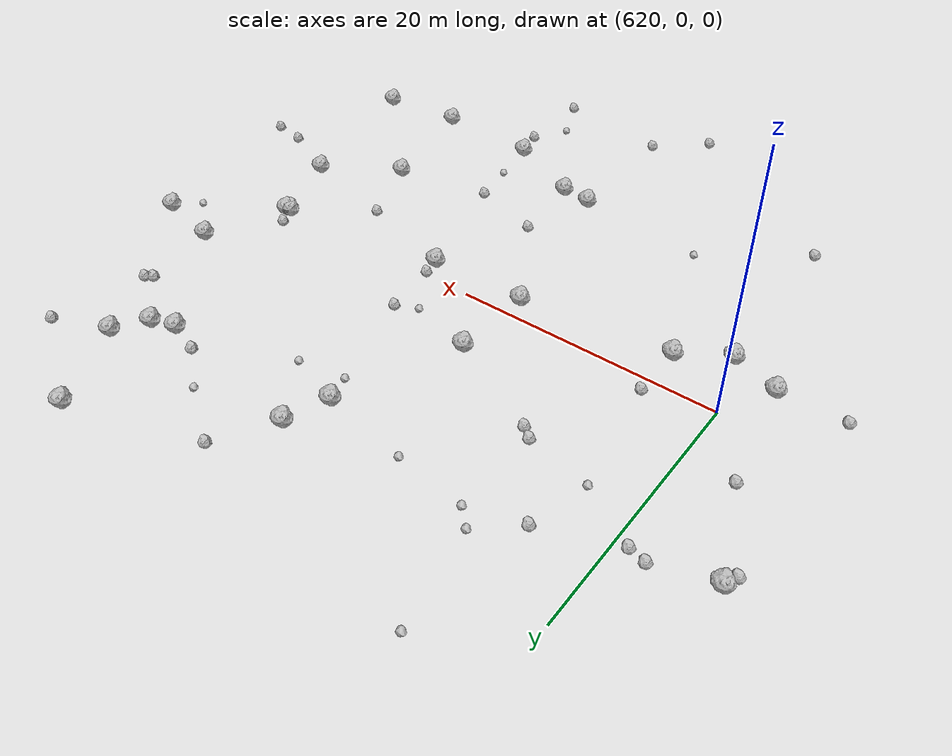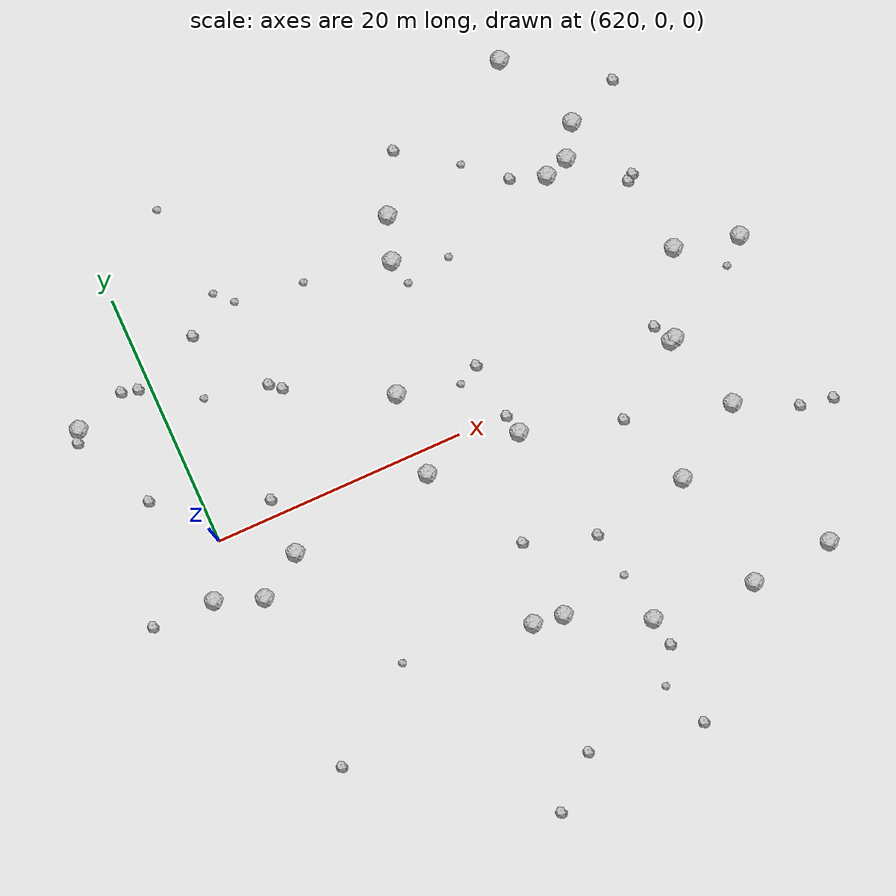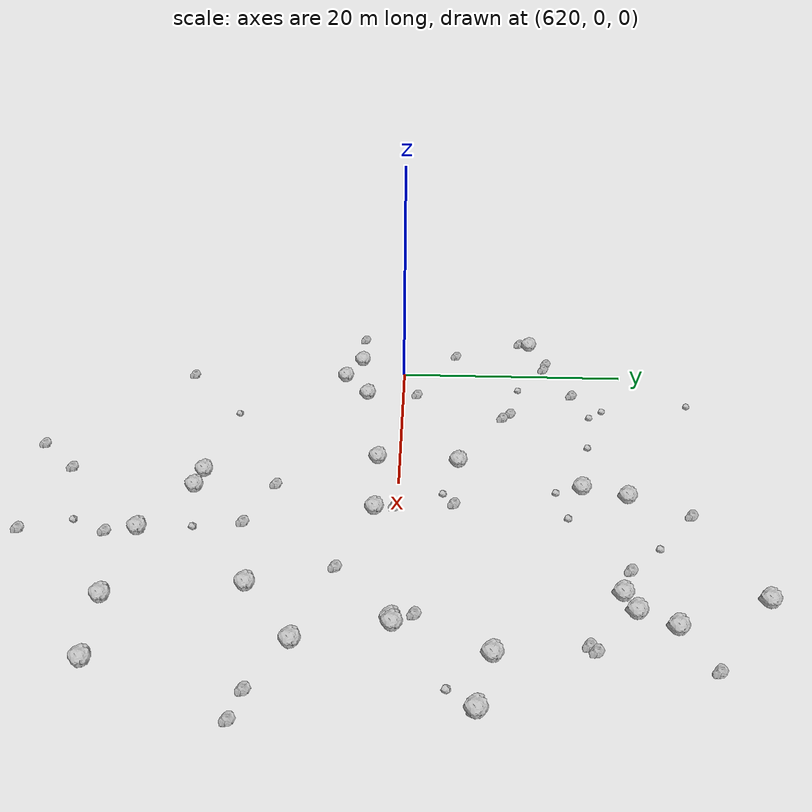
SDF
<sdf version="1.6">
 <world name="default">
  <include><uri>model://sun</uri></include>
  <model name="rock1_16_3">
   <include><uri>model://rock1</uri><pose>636.8918171965458 4.717740671508267 0.5 0 0 0</pose></include>
  </model>
  <model name="rock1_16_4">
   <include><uri>model://rock1</uri><pose>621.4518092855791 -5.376486280834875 0.5 0 0 0</pose></include>
  </model>
  <model name="rock1_16_5">
   <include><uri>model://rock1</uri><pose>655.8819229366939 -19.38977260501082 0.5 0 0 0</pose></include>
  </model>
  <model name="rock1_16_6">
   <include><uri>model://rock1</uri><pose>657.5988495511546 -0.061847325324229985 0.5 0 0 0</pose></include>
  </model>
  <model name="rock1_16_7">
   <include><uri>model://rock1</uri><pose>647.7420668546283 -18.827248626581202 0.5 0 0 0</pose></include>
  </model>
  <model name="rock1_16_8">
   <include><uri>model://rock1</uri><pose>644.2116294672677 -1.7231311151460638 0.5 0 0 0</pose></include>
  </model>
  <model name="rock1_16_9">
   <include><uri>model://rock1</uri><pose>641.8091063225994 17.476256491335853 0.5 0 0 0</pose></include>
  </model>
  <model name="rock1_16_10">
   <include><uri>model://rock1</uri><pose>636.5676126503353 -1.7832499410898954 0.5 0 0 0</pose></include>
  </model>
  <model name="rock1_16_11">
   <include><uri>model://rock1</uri><pose>617.8270936860022 -4.0058671198020726 0.5 0 0 0</pose></include>
  </model>
  <model name="rock1_16_12">
   <include><uri>model://rock1</uri><pose>640.6703614172244 14.147500026724316 0.5 0 0 0</pose></include>
  </model>
  <model name="rock1_16_13">
   <include><uri>model://rock1</uri><pose>657.5520763801708 18.286413247828563 0.5 0 0 0</pose></include>
  </model>
  <model name="rock1_16_14">
   <include><uri>model://rock1</uri><pose>654.1331949679982 15.31426175456189 0.5 0 0 0</pose></include>
  </model>
  <model name="rock1_16_15">
   <include><uri>model://rock1</uri><pose>657.9660910724624 0.03277590805026165 0.5 0 0 0</pose></include>
  </model>
  <model name="rock1_16_16">
   <include><uri>model://rock1</uri><pose>654.146805693785 -9.98772487716559 0.5 0 0 0</pose></include>
  </model>
  <model name="rock1_16_17">
   <include><uri>model://rock1</uri><pose>662.3410388428965 -18.8940443316365 0.5 0 0 0</pose></include>
  </model>
  <model name="rock1_16_18">
   <include><uri>model://rock1</uri><pose>624.9797355945303 -3.187845453055427 0.5 0 0 0</pose></include>
  </model>
  <model name="rock1_16_19">
   <include><uri>model://rock1</uri><pose>659.948288886168 -6.294192674137118 0.5 0 0 0</pose></include>
  </model>
  <model name="rock1_16_20">
   <include><uri>model://rock1</uri><pose>665.6817905678228 5.155061511599719 0.5 0 0 0</pose></include>
  </model>
  <model name="rock1_16_21">
   <include><uri>model://rock1</uri><pose>613.7172590599407 12.074266122927483 0.5 0 0 0</pose></include>
  </model>
  <model name="rock1_16_22">
   <include><uri>model://rock1</uri><pose>660.6974869271357 6.3363867991283485 0.5 0 0 0</pose></include>
  </model>
  <model name="rock1_16_23">
   <include><uri>model://rock1</uri><pose>641.6567834190726 -15.777079754000884 0.5 0 0 0</pose></include>
  </model>
  <model name="rock1_16_24">
   <include><uri>model://rock1</uri><pose>654.4501151059496 24.878497801451147 0.5 0 0 0</pose></include>
  </model>
  <model name="rock1_16_25">
   <include><uri>model://rock1</uri><pose>656.025312489348 15.917713914472358 0.5 0 0 0</pose></include>
  </model>
  <model name="rock1_16_26">
   <include><uri>model://rock1</uri><pose>639.2586748688169 -15.440886745546482 0.5 0 0 0</pose></include>
  </model>
  <model name="rock2_16_0">
   <include><uri>model://rock2</uri><pose>619.0750915979297 13.034793577657894 0.3 0 0 0</pose></include>
  </model>
  <model name="rock2_16_1">
   <include><uri>model://rock2</uri><pose>659.6079345238529 12.439707693935269 0.3 0 0 0</pose></include>
  </model>
  <model name="rock2_16_2">
   <include><uri>model://rock2</uri><pose>651.8628634666038 -4.061748570204742 0.3 0 0 0</pose></include>
  </model>
  <model name="rock2_16_3">
   <include><uri>model://rock2</uri><pose>646.4730281109719 -11.2781475573105 0.3 0 0 0</pose></include>
  </model>
  <model name="rock2_16_4">
   <include><uri>model://rock2</uri><pose>667.1227225585371 -9.031355094737886 0.3 0 0 0</pose></include>
  </model>
  <model name="rock2_16_5">
   <include><uri>model://rock2</uri><pose>651.4116241427935 16.26424918112147 0.3 0 0 0</pose></include>
  </model>
  <model name="rock2_16_6">
   <include><uri>model://rock2</uri><pose>641.01193637408 -9.497309366720295 0.3 0 0 0</pose></include>
  </model>
  <model name="rock2_16_7">
   <include><uri>model://rock2</uri><pose>624.8825365230097 1.262590254452597 0.3 0 0 0</pose></include>
  </model>
  <model name="rock2_16_8">
   <include><uri>model://rock2</uri><pose>628.2804489383121 9.37581249690269 0.3 0 0 0</pose></include>
  </model>
  <model name="rock2_16_9">
   <include><uri>model://rock2</uri><pose>616.3596211409666 4.92240608702663 0.3 0 0 0</pose></include>
  </model>
  <model name="rock2_16_10">
   <include><uri>model://rock2</uri><pose>612.7980285523068 -3.9549071609446287 0.3 0 0 0</pose></include>
  </model>
  <model name="rock2_16_11">
   <include><uri>model://rock2</uri><pose>624.4848091526337 15.08962847725352 0.3 0 0 0</pose></include>
  </model>
  <model name="rock2_16_12">
   <include><uri>model://rock2</uri><pose>648.0317644483134 -27.535168796310256 0.3 0 0 0</pose></include>
  </model>
  <model name="rock2_16_13">
   <include><uri>model://rock2</uri><pose>661.7061530123269 19.989875301830452 0.3 0 0 0</pose></include>
  </model>
  <model name="rock2_16_14">
   <include><uri>model://rock2</uri><pose>629.1252054294519 8.674104827409991 0.3 0 0 0</pose></include>
  </model>
  <model name="rock2_16_15">
   <include><uri>model://rock2</uri><pose>643.2986620996439 4.263057577128983 0.3 0 0 0</pose></include>
  </model>
  <model name="rock2_16_16">
   <include><uri>model://rock2</uri><pose>639.0950479590181 -26.033253937145762 0.3 0 0 0</pose></include>
  </model>
  <model name="rock2_16_17">
   <include><uri>model://rock2</uri><pose>621.5811637542538 -19.45773414804242 0.3 0 0 0</pose></include>
  </model>
  <model name="rock2_16_18">
   <include><uri>model://rock2</uri><pose>644.2037441865319 21.836377978756886 0.3 0 0 0</pose></include>
  </model>
  <model name="rock2_16_19">
   <include><uri>model://rock2</uri><pose>643.8301402273223 -0.18799968899729436 0.3 0 0 0</pose></include>
  </model>
  <model name="rock2_16_20">
   <include><uri>model://rock2</uri><pose>635.3500985598341 -29.377615796563163 0.3 0 0 0</pose></include>
  </model>
  <model name="rock2_16_21">
   <include><uri>model://rock2</uri><pose>648.1192937730772 -21.115064642189132 0.3 0 0 0</pose></include>
  </model>
  <model name="rock2_16_22">
   <include><uri>model://rock2</uri><pose>656.881401340845 1.4671082497334211 0.3 0 0 0</pose></include>
  </model>
  <model name="rock2_16_23">
   <include><uri>model://rock2</uri><pose>660.1402381865964 12.809439295581797 0.3 0 0 0</pose></include>
  </model>
  <model name="rock2_16_24">
   <include><uri>model://rock2</uri><pose>613.2257796512197 11.16946623794692 0.3 0 0 0</pose></include>
  </model>
  <model name="rock2_16_25">
   <include><uri>model://rock2</uri><pose>617.8040084090097 13.375875609907311 0.3 0 0 0</pose></include>
  </model>
  <model name="rock2_16_26">
   <include><uri>model://rock2</uri><pose>664.5589142739144 -8.521007204349505 0.3 0 0 0</pose></include>
  </model>
  <model name="rock3_16_0">
   <include><uri>model://rock3</uri><pose>665.7680005603573 4.874316682485421 0.2 0 0 0</pose></include>
  </model>
  <model name="rock3_16_1">
   <include><uri>model://rock3</uri><pose>625.9002494117262 25.01044614397238 0.2 0 0 0</pose></include>
  </model>
  <model name="rock3_16_2">
   <include><uri>model://rock3</uri><pose>623.3434028312087 10.374066740120973 0.2 0 0 0</pose></include>
  </model>
  <model name="rock3_16_3">
   <include><uri>model://rock3</uri><pose>641.642269961215 3.4333844707287327 0.2 0 0 0</pose></include>
  </model>
  <model name="rock3_16_4">
   <include><uri>model://rock3</uri><pose>628.452433318488 16.17631311237237 0.2 0 0 0</pose></include>
  </model>
  <model name="rock3_16_5">
   <include><uri>model://rock3</uri><pose>646.480441682927 -23.875210909218264 0.2 0 0 0</pose></include>
  </model>
  <model name="rock3_16_6">
   <include><uri>model://rock3</uri><pose>641.1069955453381 12.100864468722207 0.2 0 0 0</pose></include>
  </model>
  <model name="rock3_16_7">
   <include><uri>model://rock3</uri><pose>628.9512431200208 -14.153430849337374 0.2 0 0 0</pose></include>
  </model>
  <model name="rock3_16_8">
   <include><uri>model://rock3</uri><pose>644.727283864327 12.669656537029432 0.2 0 0 0</pose></include>
  </model>
  <model name="rock3_16_9">
   <include><uri>model://rock3</uri><pose>648.4702854682021 18.7555019449499 0.2 0 0 0</pose></include>
  </model>
  <model name="rock3_16_10">
   <include><uri>model://rock3</uri><pose>647.0254792915515 -14.901402033359867 0.2 0 0 0</pose></include>
  </model>
  <model name="rock3_16_11">
   <include><uri>model://rock3</uri><pose>663.8298614603431 3.4346372031203103 0.2 0 0 0</pose></include>
  </model>
  <model name="rock3_16_12">
   <include><uri>model://rock3</uri><pose>633.8416591835631 15.39790480189761 0.2 0 0 0</pose></include>
  </model>
  <model name="rock3_16_13">
   <include><uri>model://rock3</uri><pose>627.2127439963801 17.416048651560487 0.2 0 0 0</pose></include>
  </model>
 </world>
</sdf>
